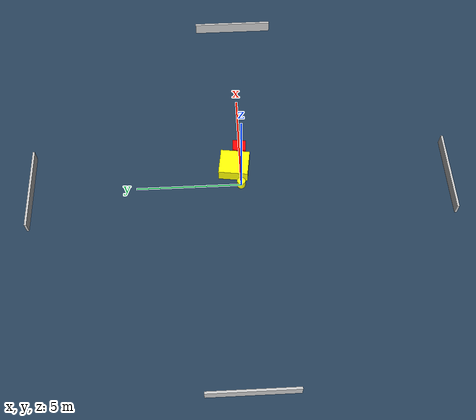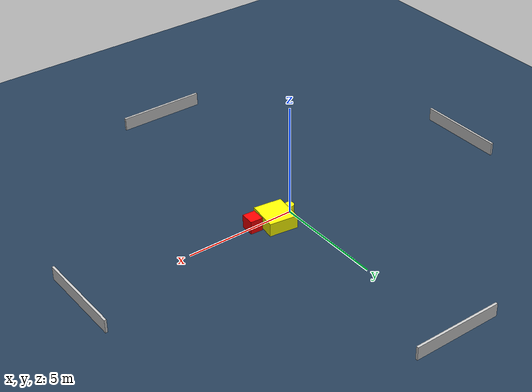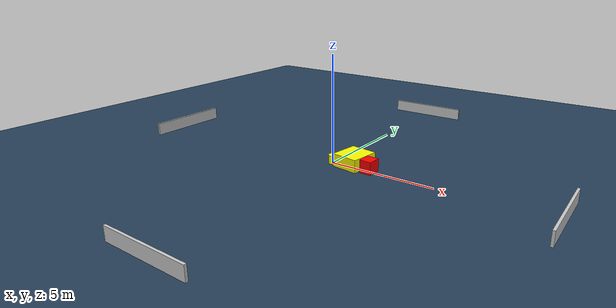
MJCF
<?xml version="1.0" ?>
<mujoco model="generated_environment">
  <option timestep="0.01" integrator="RK4" cone="elliptic"/>
  <default>
    <geom density="1"/>
  </default>
  <asset>
    <texture builtin="gradient" height="3072" name="skybox" rgb1="0.3 0.5 0.7" rgb2="0 0 0" type="skybox" width="512"/>
    <texture builtin="checker" height="300" name="groundplane" rgb1="0.2 0.3 0.4" rgb2="0.1 0.2 0.3" type="2d" width="300"/>
    <material name="groundplane" reflectance="0.2" texrepeat="5 5" texture="groundplane"/>
  </asset>
  <worldbody>
    <light dir="0 0 -1" directional="true" pos="0 0 1.5"/>
    <geom condim="3" friction="0.5 0.005 0.001" material="groundplane" name="floor" pos="0 0 0" size="0 0 0.05" type="plane"/>
    <body name="walls">
      <geom name="wall_1" condim="4" pos="-10.0 0.0 0.3" rgba="0.800000011920929 0.800000011920929 0.800000011920929 1.0" size="0.05 2.0 0.3" type="box"/>
      <geom name="wall_2" condim="4" pos="10.0 0.0 0.3" rgba="0.800000011920929 0.800000011920929 0.800000011920929 1.0" size="0.05 2.0 0.3" type="box"/>
      <geom name="wall_3" condim="4" pos="0.0 -10.0 0.3" rgba="0.800000011920929 0.800000011920929 0.800000011920929 1.0" size="2.0 0.05 0.3" type="box"/>
      <geom name="wall_4" condim="4" pos="0.0 10.0 0.3" rgba="0.800000011920929 0.800000011920929 0.800000011920929 1.0" size="2.0 0.05 0.3" type="box"/>
    </body>
    <body name="robot">
      <joint name="joint_x" type="slide" pos="0 0 0" axis="1 0 0"/>
      <joint name="joint_y" type="slide" pos="0 0 0" axis="0 1 0"/>
      <geom name="robot" type="cylinder" pos="0.0 0.0 0.2" size="0.2 0.2 0.0" mass="5.0" friction="1.0 0.005 0.0001" condim="4" rgba="1.0 1.0 0.0 1.0"/>
    </body>
    <body name="obstacle_1_movable">
      <geom name="obstacle_1_movable" condim="4" pos="0.9648860300410609 0.2989984972969588 0.3" euler="0 0 352.2473854065664" friction="0.0 0.005 0.001" rgba="1.0 1.0 0.0 1.0" size="0.640846410773805 0.7006582590767683 0.3" type="box" mass="0.1"/>
      <joint type="free"/>
    </body>
    <body name="obstacle_2_static">
      <geom name="obstacle_2_static" condim="4" pos="1.923739862276324 0.011591945371439491 0.3" euler="0 0 176.14735905415512" friction="0.0 0.005 0.001" rgba="1.0 0.0 0.0 1.0" size="0.2836682218826531 0.31697124814511535 0.3" type="box"/>
    </body>
  </worldbody>
  <actuator>
    <motor name="actuator_x" joint="joint_x" gear="1" ctrlrange="-1 1"/>
    <motor name="actuator_y" joint="joint_y" gear="1" ctrlrange="-1 1"/>
  </actuator>
</mujoco>
